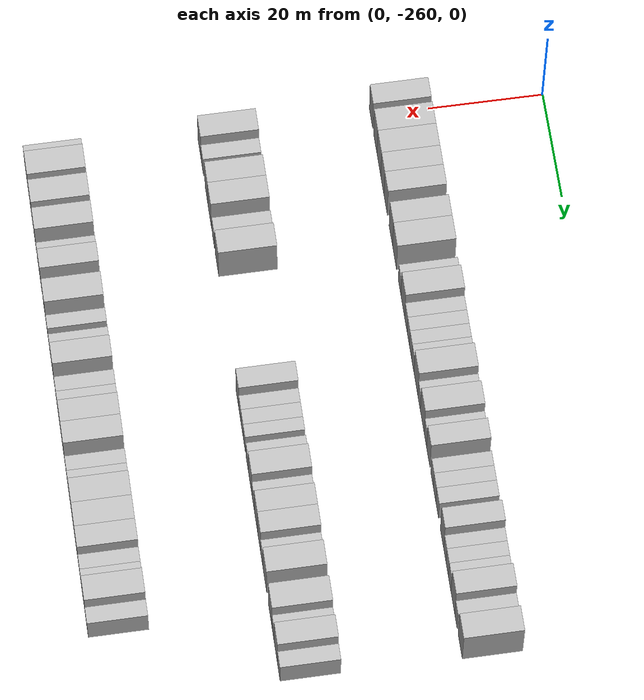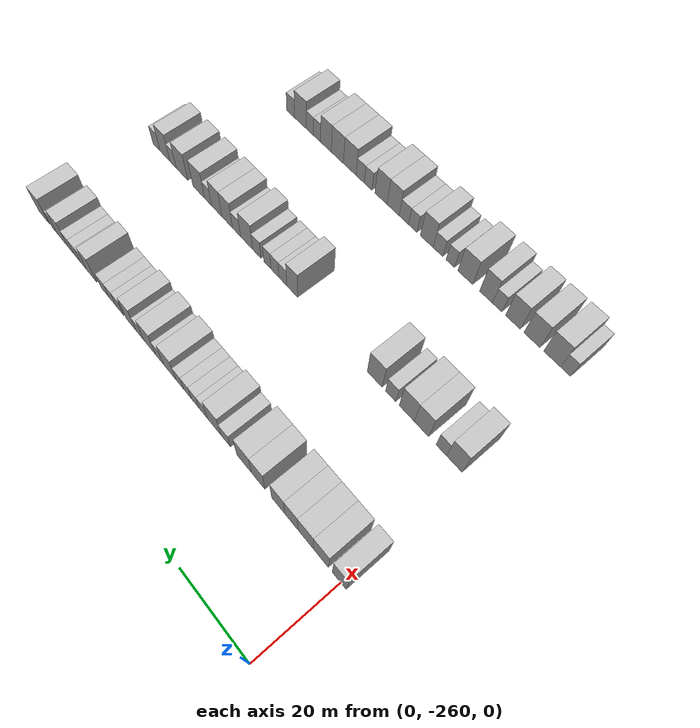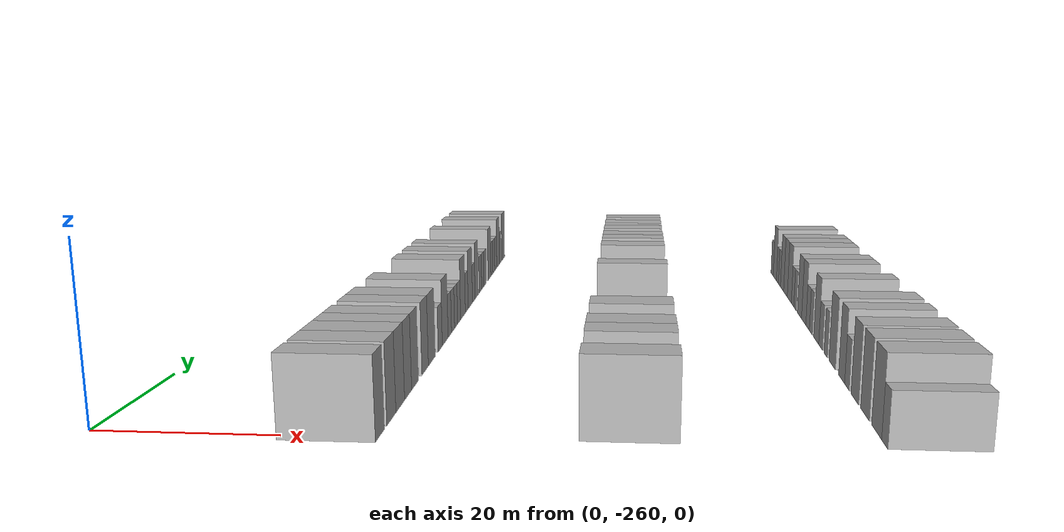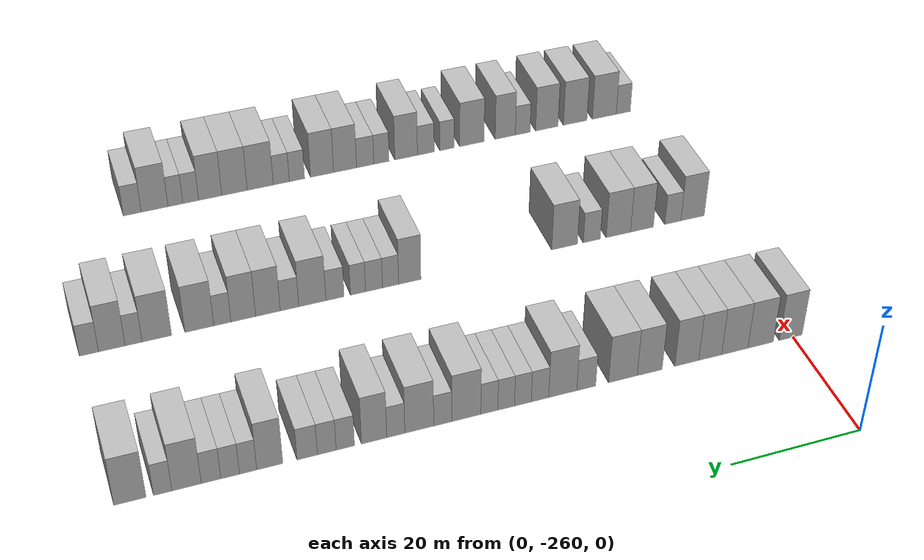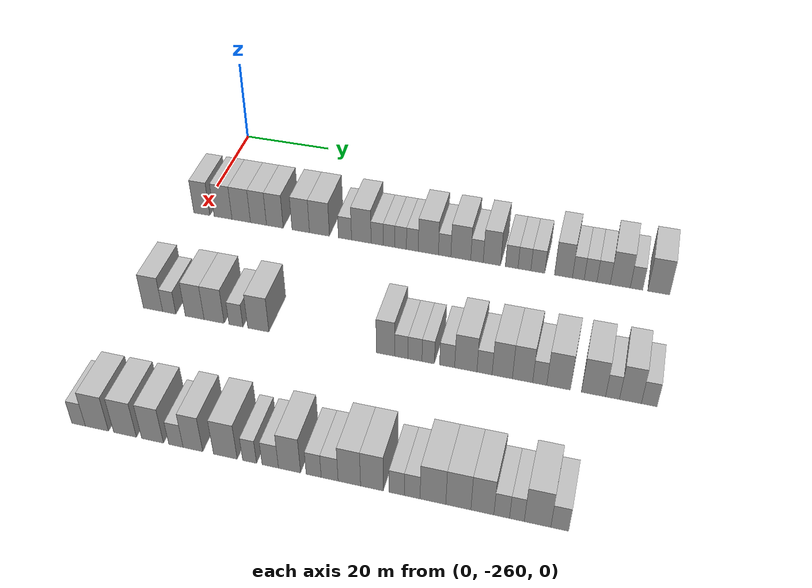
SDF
<sdf version="1.6">
 <world name="default">
  <model name="building_52">
   <static>1</static>
   <pose>25.0000 -259.5457 0 0.000000 0.000000 0.000000</pose>
   <link name="link">
    <pose>0 0 4.50 0 0 0</pose>
    <collision name="collision"><geometry><box><size>10.0000 3.7579 9.0000</size></box></geometry></collision>
    <visual name="visual">
     <cast_shadows>0</cast_shadows>
     <geometry><box><size>10.0000 3.7579 9.0000</size></box></geometry>
     <material>
      <script>
       <uri>model://HANNAS_wall/materials/scripts</uri>
       <uri>model://HANNAS_wall/materials/textures</uri>
       <name>vrc/HANNAS_wall</name>
      </script>
     </material>
    </visual>
   </link>
  </model>
  <model name="building_53">
   <static>1</static>
   <pose>25.0000 -254.5848 0 0.000000 0.000000 0.000000</pose>
   <link name="link">
    <pose>0 0 4.50 0 0 0</pose>
    <collision name="collision"><geometry><box><size>10.0000 4.1637 9.0000</size></box></geometry></collision>
    <visual name="visual">
     <cast_shadows>0</cast_shadows>
     <geometry><box><size>10.0000 4.1637 9.0000</size></box></geometry>
     <material>
      <script>
       <uri>model://HANNAS_wall/materials/scripts</uri>
       <uri>model://HANNAS_wall/materials/textures</uri>
       <name>vrc/HANNAS_wall</name>
      </script>
     </material>
    </visual>
   </link>
  </model>
  <model name="building_54">
   <static>1</static>
   <pose>25.0000 -250.3768 0 0.000000 0.000000 0.000000</pose>
   <link name="link">
    <pose>0 0 4.50 0 0 0</pose>
    <collision name="collision"><geometry><box><size>10.0000 4.2524 9.0000</size></box></geometry></collision>
    <visual name="visual">
     <cast_shadows>0</cast_shadows>
     <geometry><box><size>10.0000 4.2524 9.0000</size></box></geometry>
     <material>
      <script>
       <uri>model://HANNAS_wall/materials/scripts</uri>
       <uri>model://HANNAS_wall/materials/textures</uri>
       <name>vrc/HANNAS_wall</name>
      </script>
     </material>
    </visual>
   </link>
  </model>
  <model name="building_55">
   <static>1</static>
   <pose>25.0000 -246.4092 0 0.000000 0.000000 0.000000</pose>
   <link name="link">
    <pose>0 0 4.50 0 0 0</pose>
    <collision name="collision"><geometry><box><size>10.0000 3.6827 9.0000</size></box></geometry></collision>
    <visual name="visual">
     <cast_shadows>0</cast_shadows>
     <geometry><box><size>10.0000 3.6827 9.0000</size></box></geometry>
     <material>
      <script>
       <uri>model://HANNAS_wall/materials/scripts</uri>
       <uri>model://HANNAS_wall/materials/textures</uri>
       <name>vrc/HANNAS_wall</name>
      </script>
     </material>
    </visual>
   </link>
  </model>
  <model name="building_56">
   <static>1</static>
   <pose>25.0000 -242.6587 0 0.000000 0.000000 0.000000</pose>
   <link name="link">
    <pose>0 0 4.50 0 0 0</pose>
    <collision name="collision"><geometry><box><size>10.0000 3.8182 9.0000</size></box></geometry></collision>
    <visual name="visual">
     <cast_shadows>0</cast_shadows>
     <geometry><box><size>10.0000 3.8182 9.0000</size></box></geometry>
     <material>
      <script>
       <uri>model://HANNAS_wall/materials/scripts</uri>
       <uri>model://HANNAS_wall/materials/textures</uri>
       <name>vrc/HANNAS_wall</name>
      </script>
     </material>
    </visual>
   </link>
  </model>
  <model name="building_57">
   <static>1</static>
   <pose>25.0000 -236.7796 0 0.000000 0.000000 0.000000</pose>
   <link name="link">
    <pose>0 0 4.50 0 0 0</pose>
    <collision name="collision"><geometry><box><size>10.0000 3.9401 9.0000</size></box></geometry></collision>
    <visual name="visual">
     <cast_shadows>0</cast_shadows>
     <geometry><box><size>10.0000 3.9401 9.0000</size></box></geometry>
     <material>
      <script>
       <uri>model://HANNAS_wall/materials/scripts</uri>
       <uri>model://HANNAS_wall/materials/textures</uri>
       <name>vrc/HANNAS_wall</name>
      </script>
     </material>
    </visual>
   </link>
  </model>
  <model name="building_58">
   <static>1</static>
   <pose>25.0000 -232.5688 0 0.000000 0.000000 0.000000</pose>
   <link name="link">
    <pose>0 0 4.50 0 0 0</pose>
    <collision name="collision"><geometry><box><size>10.0000 4.4816 9.0000</size></box></geometry></collision>
    <visual name="visual">
     <cast_shadows>0</cast_shadows>
     <geometry><box><size>10.0000 4.4816 9.0000</size></box></geometry>
     <material>
      <script>
       <uri>model://HANNAS_wall/materials/scripts</uri>
       <uri>model://HANNAS_wall/materials/textures</uri>
       <name>vrc/HANNAS_wall</name>
      </script>
     </material>
    </visual>
   </link>
  </model>
  <model name="building_59">
   <static>1</static>
   <pose>25.0000 -226.8667 0 0.000000 0.000000 0.000000</pose>
   <link name="link">
    <pose>0 0 3.00 0 0 0</pose>
    <collision name="collision"><geometry><box><size>10.0000 2.9225 6.0000</size></box></geometry></collision>
    <visual name="visual">
     <cast_shadows>0</cast_shadows>
     <geometry><box><size>10.0000 2.9225 6.0000</size></box></geometry>
     <material>
      <script>
       <uri>model://HANNAS_wall/materials/scripts</uri>
       <uri>model://HANNAS_wall/materials/textures</uri>
       <name>vrc/HANNAS_wall</name>
      </script>
     </material>
    </visual>
   </link>
  </model>
  <model name="building_60">
   <static>1</static>
   <pose>25.0000 -223.2462 0 0.000000 0.000000 0.000000</pose>
   <link name="link">
    <pose>0 0 4.50 0 0 0</pose>
    <collision name="collision"><geometry><box><size>10.0000 4.3185 9.0000</size></box></geometry></collision>
    <visual name="visual">
     <cast_shadows>0</cast_shadows>
     <geometry><box><size>10.0000 4.3185 9.0000</size></box></geometry>
     <material>
      <script>
       <uri>model://HANNAS_wall/materials/scripts</uri>
       <uri>model://HANNAS_wall/materials/textures</uri>
       <name>vrc/HANNAS_wall</name>
      </script>
     </material>
    </visual>
   </link>
  </model>
  <model name="building_61">
   <static>1</static>
   <pose>25.0000 -219.7509 0 0.000000 0.000000 0.000000</pose>
   <link name="link">
    <pose>0 0 3.00 0 0 0</pose>
    <collision name="collision"><geometry><box><size>10.0000 2.6723 6.0000</size></box></geometry></collision>
    <visual name="visual">
     <cast_shadows>0</cast_shadows>
     <geometry><box><size>10.0000 2.6723 6.0000</size></box></geometry>
     <material>
      <script>
       <uri>model://HANNAS_wall/materials/scripts</uri>
       <uri>model://HANNAS_wall/materials/textures</uri>
       <name>vrc/HANNAS_wall</name>
      </script>
     </material>
    </visual>
   </link>
  </model>
  <model name="building_62">
   <static>1</static>
   <pose>25.0000 -217.1449 0 0.000000 0.000000 0.000000</pose>
   <link name="link">
    <pose>0 0 3.00 0 0 0</pose>
    <collision name="collision"><geometry><box><size>10.0000 2.5397 6.0000</size></box></geometry></collision>
    <visual name="visual">
     <cast_shadows>0</cast_shadows>
     <geometry><box><size>10.0000 2.5397 6.0000</size></box></geometry>
     <material>
      <script>
       <uri>model://HANNAS_wall/materials/scripts</uri>
       <uri>model://HANNAS_wall/materials/textures</uri>
       <name>vrc/HANNAS_wall</name>
      </script>
     </material>
    </visual>
   </link>
  </model>
  <model name="building_63">
   <static>1</static>
   <pose>25.0000 -214.6200 0 0.000000 0.000000 0.000000</pose>
   <link name="link">
    <pose>0 0 3.00 0 0 0</pose>
    <collision name="collision"><geometry><box><size>10.0000 2.5101 6.0000</size></box></geometry></collision>
    <visual name="visual">
     <cast_shadows>0</cast_shadows>
     <geometry><box><size>10.0000 2.5101 6.0000</size></box></geometry>
     <material>
      <script>
       <uri>model://HANNAS_wall/materials/scripts</uri>
       <uri>model://HANNAS_wall/materials/textures</uri>
       <name>vrc/HANNAS_wall</name>
      </script>
     </material>
    </visual>
   </link>
  </model>
  <model name="building_64">
   <static>1</static>
   <pose>25.0000 -212.0838 0 0.000000 0.000000 0.000000</pose>
   <link name="link">
    <pose>0 0 3.00 0 0 0</pose>
    <collision name="collision"><geometry><box><size>10.0000 2.5625 6.0000</size></box></geometry></collision>
    <visual name="visual">
     <cast_shadows>0</cast_shadows>
     <geometry><box><size>10.0000 2.5625 6.0000</size></box></geometry>
     <material>
      <script>
       <uri>model://HANNAS_wall/materials/scripts</uri>
       <uri>model://HANNAS_wall/materials/textures</uri>
       <name>vrc/HANNAS_wall</name>
      </script>
     </material>
    </visual>
   </link>
  </model>
  <model name="building_65">
   <static>1</static>
   <pose>25.0000 -208.6369 0 0.000000 0.000000 0.000000</pose>
   <link name="link">
    <pose>0 0 4.50 0 0 0</pose>
    <collision name="collision"><geometry><box><size>10.0000 4.3314 9.0000</size></box></geometry></collision>
    <visual name="visual">
     <cast_shadows>0</cast_shadows>
     <geometry><box><size>10.0000 4.3314 9.0000</size></box></geometry>
     <material>
      <script>
       <uri>model://HANNAS_wall/materials/scripts</uri>
       <uri>model://HANNAS_wall/materials/textures</uri>
       <name>vrc/HANNAS_wall</name>
      </script>
     </material>
    </visual>
   </link>
  </model>
  <model name="building_66">
   <static>1</static>
   <pose>25.0000 -205.1364 0 0.000000 0.000000 0.000000</pose>
   <link name="link">
    <pose>0 0 3.00 0 0 0</pose>
    <collision name="collision"><geometry><box><size>10.0000 2.6695 6.0000</size></box></geometry></collision>
    <visual name="visual">
     <cast_shadows>0</cast_shadows>
     <geometry><box><size>10.0000 2.6695 6.0000</size></box></geometry>
     <material>
      <script>
       <uri>model://HANNAS_wall/materials/scripts</uri>
       <uri>model://HANNAS_wall/materials/textures</uri>
       <name>vrc/HANNAS_wall</name>
      </script>
     </material>
    </visual>
   </link>
  </model>
  <model name="building_67">
   <static>1</static>
   <pose>25.0000 -201.6869 0 0.000000 0.000000 0.000000</pose>
   <link name="link">
    <pose>0 0 4.50 0 0 0</pose>
    <collision name="collision"><geometry><box><size>10.0000 4.2294 9.0000</size></box></geometry></collision>
    <visual name="visual">
     <cast_shadows>0</cast_shadows>
     <geometry><box><size>10.0000 4.2294 9.0000</size></box></geometry>
     <material>
      <script>
       <uri>model://HANNAS_wall/materials/scripts</uri>
       <uri>model://HANNAS_wall/materials/textures</uri>
       <name>vrc/HANNAS_wall</name>
      </script>
     </material>
    </visual>
   </link>
  </model>
  <model name="building_68">
   <static>1</static>
   <pose>25.0000 -198.2515 0 0.000000 0.000000 0.000000</pose>
   <link name="link">
    <pose>0 0 3.00 0 0 0</pose>
    <collision name="collision"><geometry><box><size>10.0000 2.6414 6.0000</size></box></geometry></collision>
    <visual name="visual">
     <cast_shadows>0</cast_shadows>
     <geometry><box><size>10.0000 2.6414 6.0000</size></box></geometry>
     <material>
      <script>
       <uri>model://HANNAS_wall/materials/scripts</uri>
       <uri>model://HANNAS_wall/materials/textures</uri>
       <name>vrc/HANNAS_wall</name>
      </script>
     </material>
    </visual>
   </link>
  </model>
  <model name="building_69">
   <static>1</static>
   <pose>25.0000 -195.0976 0 0.000000 0.000000 0.000000</pose>
   <link name="link">
    <pose>0 0 4.50 0 0 0</pose>
    <collision name="collision"><geometry><box><size>10.0000 3.6665 9.0000</size></box></geometry></collision>
    <visual name="visual">
     <cast_shadows>0</cast_shadows>
     <geometry><box><size>10.0000 3.6665 9.0000</size></box></geometry>
     <material>
      <script>
       <uri>model://HANNAS_wall/materials/scripts</uri>
       <uri>model://HANNAS_wall/materials/textures</uri>
       <name>vrc/HANNAS_wall</name>
      </script>
     </material>
    </visual>
   </link>
  </model>
  <model name="building_70">
   <static>1</static>
   <pose>25.0000 -190.9425 0 0.000000 0.000000 0.000000</pose>
   <link name="link">
    <pose>0 0 3.00 0 0 0</pose>
    <collision name="collision"><geometry><box><size>10.0000 2.6438 6.0000</size></box></geometry></collision>
    <visual name="visual">
     <cast_shadows>0</cast_shadows>
     <geometry><box><size>10.0000 2.6438 6.0000</size></box></geometry>
     <material>
      <script>
       <uri>model://HANNAS_wall/materials/scripts</uri>
       <uri>model://HANNAS_wall/materials/textures</uri>
       <name>vrc/HANNAS_wall</name>
      </script>
     </material>
    </visual>
   </link>
  </model>
  <model name="building_71">
   <static>1</static>
   <pose>25.0000 -188.2824 0 0.000000 0.000000 0.000000</pose>
   <link name="link">
    <pose>0 0 3.00 0 0 0</pose>
    <collision name="collision"><geometry><box><size>10.0000 2.6764 6.0000</size></box></geometry></collision>
    <visual name="visual">
     <cast_shadows>0</cast_shadows>
     <geometry><box><size>10.0000 2.6764 6.0000</size></box></geometry>
     <material>
      <script>
       <uri>model://HANNAS_wall/materials/scripts</uri>
       <uri>model://HANNAS_wall/materials/textures</uri>
       <name>vrc/HANNAS_wall</name>
      </script>
     </material>
    </visual>
   </link>
  </model>
  <model name="building_72">
   <static>1</static>
   <pose>25.0000 -185.4941 0 0.000000 0.000000 0.000000</pose>
   <link name="link">
    <pose>0 0 3.00 0 0 0</pose>
    <collision name="collision"><geometry><box><size>10.0000 2.9001 6.0000</size></box></geometry></collision>
    <visual name="visual">
     <cast_shadows>0</cast_shadows>
     <geometry><box><size>10.0000 2.9001 6.0000</size></box></geometry>
     <material>
      <script>
       <uri>model://HANNAS_wall/materials/scripts</uri>
       <uri>model://HANNAS_wall/materials/textures</uri>
       <name>vrc/HANNAS_wall</name>
      </script>
     </material>
    </visual>
   </link>
  </model>
  <model name="building_73">
   <static>1</static>
   <pose>25.0000 -180.2098 0 0.000000 0.000000 0.000000</pose>
   <link name="link">
    <pose>0 0 4.50 0 0 0</pose>
    <collision name="collision"><geometry><box><size>10.0000 3.6686 9.0000</size></box></geometry></collision>
    <visual name="visual">
     <cast_shadows>0</cast_shadows>
     <geometry><box><size>10.0000 3.6686 9.0000</size></box></geometry>
     <material>
      <script>
       <uri>model://HANNAS_wall/materials/scripts</uri>
       <uri>model://HANNAS_wall/materials/textures</uri>
       <name>vrc/HANNAS_wall</name>
      </script>
     </material>
    </visual>
   </link>
  </model>
  <model name="building_74">
   <static>1</static>
   <pose>25.0000 -177.1696 0 0.000000 0.000000 0.000000</pose>
   <link name="link">
    <pose>0 0 3.00 0 0 0</pose>
    <collision name="collision"><geometry><box><size>10.0000 2.4118 6.0000</size></box></geometry></collision>
    <visual name="visual">
     <cast_shadows>0</cast_shadows>
     <geometry><box><size>10.0000 2.4118 6.0000</size></box></geometry>
     <material>
      <script>
       <uri>model://HANNAS_wall/materials/scripts</uri>
       <uri>model://HANNAS_wall/materials/textures</uri>
       <name>vrc/HANNAS_wall</name>
      </script>
     </material>
    </visual>
   </link>
  </model>
  <model name="building_75">
   <static>1</static>
   <pose>25.0000 -174.6693 0 0.000000 0.000000 0.000000</pose>
   <link name="link">
    <pose>0 0 3.00 0 0 0</pose>
    <collision name="collision"><geometry><box><size>10.0000 2.5888 6.0000</size></box></geometry></collision>
    <visual name="visual">
     <cast_shadows>0</cast_shadows>
     <geometry><box><size>10.0000 2.5888 6.0000</size></box></geometry>
     <material>
      <script>
       <uri>model://HANNAS_wall/materials/scripts</uri>
       <uri>model://HANNAS_wall/materials/textures</uri>
       <name>vrc/HANNAS_wall</name>
      </script>
     </material>
    </visual>
   </link>
  </model>
  <model name="building_76">
   <static>1</static>
   <pose>25.0000 -172.0220 0 0.000000 0.000000 0.000000</pose>
   <link name="link">
    <pose>0 0 3.00 0 0 0</pose>
    <collision name="collision"><geometry><box><size>10.0000 2.7059 6.0000</size></box></geometry></collision>
    <visual name="visual">
     <cast_shadows>0</cast_shadows>
     <geometry><box><size>10.0000 2.7059 6.0000</size></box></geometry>
     <material>
      <script>
       <uri>model://HANNAS_wall/materials/scripts</uri>
       <uri>model://HANNAS_wall/materials/textures</uri>
       <name>vrc/HANNAS_wall</name>
      </script>
     </material>
    </visual>
   </link>
  </model>
  <model name="building_77">
   <static>1</static>
   <pose>25.0000 -168.6550 0 0.000000 0.000000 0.000000</pose>
   <link name="link">
    <pose>0 0 4.50 0 0 0</pose>
    <collision name="collision"><geometry><box><size>10.0000 4.0281 9.0000</size></box></geometry></collision>
    <visual name="visual">
     <cast_shadows>0</cast_shadows>
     <geometry><box><size>10.0000 4.0281 9.0000</size></box></geometry>
     <material>
      <script>
       <uri>model://HANNAS_wall/materials/scripts</uri>
       <uri>model://HANNAS_wall/materials/textures</uri>
       <name>vrc/HANNAS_wall</name>
      </script>
     </material>
    </visual>
   </link>
  </model>
  <model name="building_78">
   <static>1</static>
   <pose>25.0000 -165.3881 0 0.000000 0.000000 0.000000</pose>
   <link name="link">
    <pose>0 0 3.00 0 0 0</pose>
    <collision name="collision"><geometry><box><size>10.0000 2.5058 6.0000</size></box></geometry></collision>
    <visual name="visual">
     <cast_shadows>0</cast_shadows>
     <geometry><box><size>10.0000 2.5058 6.0000</size></box></geometry>
     <material>
      <script>
       <uri>model://HANNAS_wall/materials/scripts</uri>
       <uri>model://HANNAS_wall/materials/textures</uri>
       <name>vrc/HANNAS_wall</name>
      </script>
     </material>
    </visual>
   </link>
  </model>
  <model name="building_79">
   <static>1</static>
   <pose>25.0000 -160.9513 0 0.000000 0.000000 0.000000</pose>
   <link name="link">
    <pose>0 0 4.50 0 0 0</pose>
    <collision name="collision"><geometry><box><size>10.0000 4.3678 9.0000</size></box></geometry></collision>
    <visual name="visual">
     <cast_shadows>0</cast_shadows>
     <geometry><box><size>10.0000 4.3678 9.0000</size></box></geometry>
     <material>
      <script>
       <uri>model://HANNAS_wall/materials/scripts</uri>
       <uri>model://HANNAS_wall/materials/textures</uri>
       <name>vrc/HANNAS_wall</name>
      </script>
     </material>
    </visual>
   </link>
  </model>
  <model name="building_275">
   <static>1</static>
   <pose>55.0000 -257.5789 0 0.000000 0.000000 0.000000</pose>
   <link name="link">
    <pose>0 0 4.50 0 0 0</pose>
    <collision name="collision"><geometry><box><size>10.0000 4.1153 9.0000</size></box></geometry></collision>
    <visual name="visual">
     <cast_shadows>0</cast_shadows>
     <geometry><box><size>10.0000 4.1153 9.0000</size></box></geometry>
     <material>
      <script>
       <uri>model://HANNAS_wall/materials/scripts</uri>
       <uri>model://HANNAS_wall/materials/textures</uri>
       <name>vrc/HANNAS_wall</name>
      </script>
     </material>
    </visual>
   </link>
  </model>
  <model name="building_276">
   <static>1</static>
   <pose>55.0000 -254.1149 0 0.000000 0.000000 0.000000</pose>
   <link name="link">
    <pose>0 0 3.00 0 0 0</pose>
    <collision name="collision"><geometry><box><size>10.0000 2.8126 6.0000</size></box></geometry></collision>
    <visual name="visual">
     <cast_shadows>0</cast_shadows>
     <geometry><box><size>10.0000 2.8126 6.0000</size></box></geometry>
     <material>
      <script>
       <uri>model://HANNAS_wall/materials/scripts</uri>
       <uri>model://HANNAS_wall/materials/textures</uri>
       <name>vrc/HANNAS_wall</name>
      </script>
     </material>
    </visual>
   </link>
  </model>
  <model name="building_277">
   <static>1</static>
   <pose>55.0000 -248.7320 0 0.000000 0.000000 0.000000</pose>
   <link name="link">
    <pose>0 0 4.50 0 0 0</pose>
    <collision name="collision"><geometry><box><size>10.0000 3.9532 9.0000</size></box></geometry></collision>
    <visual name="visual">
     <cast_shadows>0</cast_shadows>
     <geometry><box><size>10.0000 3.9532 9.0000</size></box></geometry>
     <material>
      <script>
       <uri>model://HANNAS_wall/materials/scripts</uri>
       <uri>model://HANNAS_wall/materials/textures</uri>
       <name>vrc/HANNAS_wall</name>
      </script>
     </material>
    </visual>
   </link>
  </model>
  <model name="building_278">
   <static>1</static>
   <pose>55.0000 -244.6513 0 0.000000 0.000000 0.000000</pose>
   <link name="link">
    <pose>0 0 4.50 0 0 0</pose>
    <collision name="collision"><geometry><box><size>10.0000 4.2082 9.0000</size></box></geometry></collision>
    <visual name="visual">
     <cast_shadows>0</cast_shadows>
     <geometry><box><size>10.0000 4.2082 9.0000</size></box></geometry>
     <material>
      <script>
       <uri>model://HANNAS_wall/materials/scripts</uri>
       <uri>model://HANNAS_wall/materials/textures</uri>
       <name>vrc/HANNAS_wall</name>
      </script>
     </material>
    </visual>
   </link>
  </model>
  <model name="building_279">
   <static>1</static>
   <pose>55.0000 -240.0978 0 0.000000 0.000000 0.000000</pose>
   <link name="link">
    <pose>0 0 3.00 0 0 0</pose>
    <collision name="collision"><geometry><box><size>10.0000 2.8988 6.0000</size></box></geometry></collision>
    <visual name="visual">
     <cast_shadows>0</cast_shadows>
     <geometry><box><size>10.0000 2.8988 6.0000</size></box></geometry>
     <material>
      <script>
       <uri>model://HANNAS_wall/materials/scripts</uri>
       <uri>model://HANNAS_wall/materials/textures</uri>
       <name>vrc/HANNAS_wall</name>
      </script>
     </material>
    </visual>
   </link>
  </model>
  <model name="building_280">
   <static>1</static>
   <pose>55.0000 -235.4763 0 0.000000 0.000000 0.000000</pose>
   <link name="link">
    <pose>0 0 4.50 0 0 0</pose>
    <collision name="collision"><geometry><box><size>10.0000 4.3441 9.0000</size></box></geometry></collision>
    <visual name="visual">
     <cast_shadows>0</cast_shadows>
     <geometry><box><size>10.0000 4.3441 9.0000</size></box></geometry>
     <material>
      <script>
       <uri>model://HANNAS_wall/materials/scripts</uri>
       <uri>model://HANNAS_wall/materials/textures</uri>
       <name>vrc/HANNAS_wall</name>
      </script>
     </material>
    </visual>
   </link>
  </model>
  <model name="building_281">
   <static>1</static>
   <pose>55.0000 -209.9006 0 0.000000 0.000000 0.000000</pose>
   <link name="link">
    <pose>0 0 4.50 0 0 0</pose>
    <collision name="collision"><geometry><box><size>10.0000 3.6024 9.0000</size></box></geometry></collision>
    <visual name="visual">
     <cast_shadows>0</cast_shadows>
     <geometry><box><size>10.0000 3.6024 9.0000</size></box></geometry>
     <material>
      <script>
       <uri>model://HANNAS_wall/materials/scripts</uri>
       <uri>model://HANNAS_wall/materials/textures</uri>
       <name>vrc/HANNAS_wall</name>
      </script>
     </material>
    </visual>
   </link>
  </model>
  <model name="building_282">
   <static>1</static>
   <pose>55.0000 -206.8129 0 0.000000 0.000000 0.000000</pose>
   <link name="link">
    <pose>0 0 3.00 0 0 0</pose>
    <collision name="collision"><geometry><box><size>10.0000 2.5730 6.0000</size></box></geometry></collision>
    <visual name="visual">
     <cast_shadows>0</cast_shadows>
     <geometry><box><size>10.0000 2.5730 6.0000</size></box></geometry>
     <material>
      <script>
       <uri>model://HANNAS_wall/materials/scripts</uri>
       <uri>model://HANNAS_wall/materials/textures</uri>
       <name>vrc/HANNAS_wall</name>
      </script>
     </material>
    </visual>
   </link>
  </model>
  <model name="building_283">
   <static>1</static>
   <pose>55.0000 -204.1713 0 0.000000 0.000000 0.000000</pose>
   <link name="link">
    <pose>0 0 3.00 0 0 0</pose>
    <collision name="collision"><geometry><box><size>10.0000 2.7102 6.0000</size></box></geometry></collision>
    <visual name="visual">
     <cast_shadows>0</cast_shadows>
     <geometry><box><size>10.0000 2.7102 6.0000</size></box></geometry>
     <material>
      <script>
       <uri>model://HANNAS_wall/materials/scripts</uri>
       <uri>model://HANNAS_wall/materials/textures</uri>
       <name>vrc/HANNAS_wall</name>
      </script>
     </material>
    </visual>
   </link>
  </model>
  <model name="building_284">
   <static>1</static>
   <pose>55.0000 -201.6143 0 0.000000 0.000000 0.000000</pose>
   <link name="link">
    <pose>0 0 3.00 0 0 0</pose>
    <collision name="collision"><geometry><box><size>10.0000 2.4038 6.0000</size></box></geometry></collision>
    <visual name="visual">
     <cast_shadows>0</cast_shadows>
     <geometry><box><size>10.0000 2.4038 6.0000</size></box></geometry>
     <material>
      <script>
       <uri>model://HANNAS_wall/materials/scripts</uri>
       <uri>model://HANNAS_wall/materials/textures</uri>
       <name>vrc/HANNAS_wall</name>
      </script>
     </material>
    </visual>
   </link>
  </model>
  <model name="building_285">
   <static>1</static>
   <pose>55.0000 -197.9735 0 0.000000 0.000000 0.000000</pose>
   <link name="link">
    <pose>0 0 3.00 0 0 0</pose>
    <collision name="collision"><geometry><box><size>10.0000 2.8779 6.0000</size></box></geometry></collision>
    <visual name="visual">
     <cast_shadows>0</cast_shadows>
     <geometry><box><size>10.0000 2.8779 6.0000</size></box></geometry>
     <material>
      <script>
       <uri>model://HANNAS_wall/materials/scripts</uri>
       <uri>model://HANNAS_wall/materials/textures</uri>
       <name>vrc/HANNAS_wall</name>
      </script>
     </material>
    </visual>
   </link>
  </model>
  <model name="building_286">
   <static>1</static>
   <pose>55.0000 -194.4116 0 0.000000 0.000000 0.000000</pose>
   <link name="link">
    <pose>0 0 4.50 0 0 0</pose>
    <collision name="collision"><geometry><box><size>10.0000 4.2459 9.0000</size></box></geometry></collision>
    <visual name="visual">
     <cast_shadows>0</cast_shadows>
     <geometry><box><size>10.0000 4.2459 9.0000</size></box></geometry>
     <material>
      <script>
       <uri>model://HANNAS_wall/materials/scripts</uri>
       <uri>model://HANNAS_wall/materials/textures</uri>
       <name>vrc/HANNAS_wall</name>
      </script>
     </material>
    </visual>
   </link>
  </model>
  <model name="building_287">
   <static>1</static>
   <pose>55.0000 -190.8478 0 0.000000 0.000000 0.000000</pose>
   <link name="link">
    <pose>0 0 3.00 0 0 0</pose>
    <collision name="collision"><geometry><box><size>10.0000 2.8817 6.0000</size></box></geometry></collision>
    <visual name="visual">
     <cast_shadows>0</cast_shadows>
     <geometry><box><size>10.0000 2.8817 6.0000</size></box></geometry>
     <material>
      <script>
       <uri>model://HANNAS_wall/materials/scripts</uri>
       <uri>model://HANNAS_wall/materials/textures</uri>
       <name>vrc/HANNAS_wall</name>
      </script>
     </material>
    </visual>
   </link>
  </model>
  <model name="building_288">
   <static>1</static>
   <pose>55.0000 -187.5002 0 0.000000 0.000000 0.000000</pose>
   <link name="link">
    <pose>0 0 4.50 0 0 0</pose>
    <collision name="collision"><geometry><box><size>10.0000 3.8134 9.0000</size></box></geometry></collision>
    <visual name="visual">
     <cast_shadows>0</cast_shadows>
     <geometry><box><size>10.0000 3.8134 9.0000</size></box></geometry>
     <material>
      <script>
       <uri>model://HANNAS_wall/materials/scripts</uri>
       <uri>model://HANNAS_wall/materials/textures</uri>
       <name>vrc/HANNAS_wall</name>
      </script>
     </material>
    </visual>
   </link>
  </model>
  <model name="building_289">
   <static>1</static>
   <pose>55.0000 -183.7014 0 0.000000 0.000000 0.000000</pose>
   <link name="link">
    <pose>0 0 4.50 0 0 0</pose>
    <collision name="collision"><geometry><box><size>10.0000 3.7843 9.0000</size></box></geometry></collision>
    <visual name="visual">
     <cast_shadows>0</cast_shadows>
     <geometry><box><size>10.0000 3.7843 9.0000</size></box></geometry>
     <material>
      <script>
       <uri>model://HANNAS_wall/materials/scripts</uri>
       <uri>model://HANNAS_wall/materials/textures</uri>
       <name>vrc/HANNAS_wall</name>
      </script>
     </material>
    </visual>
   </link>
  </model>
  <model name="building_290">
   <static>1</static>
   <pose>55.0000 -180.4976 0 0.000000 0.000000 0.000000</pose>
   <link name="link">
    <pose>0 0 3.00 0 0 0</pose>
    <collision name="collision"><geometry><box><size>10.0000 2.6234 6.0000</size></box></geometry></collision>
    <visual name="visual">
     <cast_shadows>0</cast_shadows>
     <geometry><box><size>10.0000 2.6234 6.0000</size></box></geometry>
     <material>
      <script>
       <uri>model://HANNAS_wall/materials/scripts</uri>
       <uri>model://HANNAS_wall/materials/textures</uri>
       <name>vrc/HANNAS_wall</name>
      </script>
     </material>
    </visual>
   </link>
  </model>
  <model name="building_291">
   <static>1</static>
   <pose>55.0000 -176.9973 0 0.000000 0.000000 0.000000</pose>
   <link name="link">
    <pose>0 0 4.50 0 0 0</pose>
    <collision name="collision"><geometry><box><size>10.0000 4.3772 9.0000</size></box></geometry></collision>
    <visual name="visual">
     <cast_shadows>0</cast_shadows>
     <geometry><box><size>10.0000 4.3772 9.0000</size></box></geometry>
     <material>
      <script>
       <uri>model://HANNAS_wall/materials/scripts</uri>
       <uri>model://HANNAS_wall/materials/textures</uri>
       <name>vrc/HANNAS_wall</name>
      </script>
     </material>
    </visual>
   </link>
  </model>
  <model name="building_292">
   <static>1</static>
   <pose>55.0000 -170.6010 0 0.000000 0.000000 0.000000</pose>
   <link name="link">
    <pose>0 0 4.50 0 0 0</pose>
    <collision name="collision"><geometry><box><size>10.0000 4.4155 9.0000</size></box></geometry></collision>
    <visual name="visual">
     <cast_shadows>0</cast_shadows>
     <geometry><box><size>10.0000 4.4155 9.0000</size></box></geometry>
     <material>
      <script>
       <uri>model://HANNAS_wall/materials/scripts</uri>
       <uri>model://HANNAS_wall/materials/textures</uri>
       <name>vrc/HANNAS_wall</name>
      </script>
     </material>
    </visual>
   </link>
  </model>
  <model name="building_293">
   <static>1</static>
   <pose>55.0000 -167.1370 0 0.000000 0.000000 0.000000</pose>
   <link name="link">
    <pose>0 0 3.00 0 0 0</pose>
    <collision name="collision"><geometry><box><size>10.0000 2.5123 6.0000</size></box></geometry></collision>
    <visual name="visual">
     <cast_shadows>0</cast_shadows>
     <geometry><box><size>10.0000 2.5123 6.0000</size></box></geometry>
     <material>
      <script>
       <uri>model://HANNAS_wall/materials/scripts</uri>
       <uri>model://HANNAS_wall/materials/textures</uri>
       <name>vrc/HANNAS_wall</name>
      </script>
     </material>
    </visual>
   </link>
  </model>
  <model name="building_294">
   <static>1</static>
   <pose>55.0000 -163.9130 0 0.000000 0.000000 0.000000</pose>
   <link name="link">
    <pose>0 0 4.50 0 0 0</pose>
    <collision name="collision"><geometry><box><size>10.0000 3.9358 9.0000</size></box></geometry></collision>
    <visual name="visual">
     <cast_shadows>0</cast_shadows>
     <geometry><box><size>10.0000 3.9358 9.0000</size></box></geometry>
     <material>
      <script>
       <uri>model://HANNAS_wall/materials/scripts</uri>
       <uri>model://HANNAS_wall/materials/textures</uri>
       <name>vrc/HANNAS_wall</name>
      </script>
     </material>
    </visual>
   </link>
  </model>
  <model name="building_295">
   <static>1</static>
   <pose>55.0000 -160.5328 0 0.000000 0.000000 0.000000</pose>
   <link name="link">
    <pose>0 0 3.00 0 0 0</pose>
    <collision name="collision"><geometry><box><size>10.0000 2.8246 6.0000</size></box></geometry></collision>
    <visual name="visual">
     <cast_shadows>0</cast_shadows>
     <geometry><box><size>10.0000 2.8246 6.0000</size></box></geometry>
     <material>
      <script>
       <uri>model://HANNAS_wall/materials/scripts</uri>
       <uri>model://HANNAS_wall/materials/textures</uri>
       <name>vrc/HANNAS_wall</name>
      </script>
     </material>
    </visual>
   </link>
  </model>
  <model name="building_490">
   <static>1</static>
   <pose>85.0000 -258.3672 0 0.000000 0.000000 0.000000</pose>
   <link name="link">
    <pose>0 0 3.00 0 0 0</pose>
    <collision name="collision"><geometry><box><size>10.0000 2.6274 6.0000</size></box></geometry></collision>
    <visual name="visual">
     <cast_shadows>0</cast_shadows>
     <geometry><box><size>10.0000 2.6274 6.0000</size></box></geometry>
     <material>
      <script>
       <uri>model://HANNAS_wall/materials/scripts</uri>
       <uri>model://HANNAS_wall/materials/textures</uri>
       <name>vrc/HANNAS_wall</name>
      </script>
     </material>
    </visual>
   </link>
  </model>
  <model name="building_491">
   <static>1</static>
   <pose>85.0000 -254.8154 0 0.000000 0.000000 0.000000</pose>
   <link name="link">
    <pose>0 0 4.50 0 0 0</pose>
    <collision name="collision"><geometry><box><size>10.0000 4.4761 9.0000</size></box></geometry></collision>
    <visual name="visual">
     <cast_shadows>0</cast_shadows>
     <geometry><box><size>10.0000 4.4761 9.0000</size></box></geometry>
     <material>
      <script>
       <uri>model://HANNAS_wall/materials/scripts</uri>
       <uri>model://HANNAS_wall/materials/textures</uri>
       <name>vrc/HANNAS_wall</name>
      </script>
     </material>
    </visual>
   </link>
  </model>
  <model name="building_492">
   <static>1</static>
   <pose>85.0000 -249.4006 0 0.000000 0.000000 0.000000</pose>
   <link name="link">
    <pose>0 0 4.50 0 0 0</pose>
    <collision name="collision"><geometry><box><size>10.0000 4.3535 9.0000</size></box></geometry></collision>
    <visual name="visual">
     <cast_shadows>0</cast_shadows>
     <geometry><box><size>10.0000 4.3535 9.0000</size></box></geometry>
     <material>
      <script>
       <uri>model://HANNAS_wall/materials/scripts</uri>
       <uri>model://HANNAS_wall/materials/textures</uri>
       <name>vrc/HANNAS_wall</name>
      </script>
     </material>
    </visual>
   </link>
  </model>
  <model name="building_493">
   <static>1</static>
   <pose>85.0000 -244.1594 0 0.000000 0.000000 0.000000</pose>
   <link name="link">
    <pose>0 0 4.50 0 0 0</pose>
    <collision name="collision"><geometry><box><size>10.0000 4.1290 9.0000</size></box></geometry></collision>
    <visual name="visual">
     <cast_shadows>0</cast_shadows>
     <geometry><box><size>10.0000 4.1290 9.0000</size></box></geometry>
     <material>
      <script>
       <uri>model://HANNAS_wall/materials/scripts</uri>
       <uri>model://HANNAS_wall/materials/textures</uri>
       <name>vrc/HANNAS_wall</name>
      </script>
     </material>
    </visual>
   </link>
  </model>
  <model name="building_494">
   <static>1</static>
   <pose>85.0000 -239.7485 0 0.000000 0.000000 0.000000</pose>
   <link name="link">
    <pose>0 0 3.00 0 0 0</pose>
    <collision name="collision"><geometry><box><size>10.0000 2.6926 6.0000</size></box></geometry></collision>
    <visual name="visual">
     <cast_shadows>0</cast_shadows>
     <geometry><box><size>10.0000 2.6926 6.0000</size></box></geometry>
     <material>
      <script>
       <uri>model://HANNAS_wall/materials/scripts</uri>
       <uri>model://HANNAS_wall/materials/textures</uri>
       <name>vrc/HANNAS_wall</name>
      </script>
     </material>
    </visual>
   </link>
  </model>
  <model name="building_495">
   <static>1</static>
   <pose>85.0000 -236.5706 0 0.000000 0.000000 0.000000</pose>
   <link name="link">
    <pose>0 0 4.50 0 0 0</pose>
    <collision name="collision"><geometry><box><size>10.0000 3.6631 9.0000</size></box></geometry></collision>
    <visual name="visual">
     <cast_shadows>0</cast_shadows>
     <geometry><box><size>10.0000 3.6631 9.0000</size></box></geometry>
     <material>
      <script>
       <uri>model://HANNAS_wall/materials/scripts</uri>
       <uri>model://HANNAS_wall/materials/textures</uri>
       <name>vrc/HANNAS_wall</name>
      </script>
     </material>
    </visual>
   </link>
  </model>
  <model name="building_496">
   <static>1</static>
   <pose>85.0000 -230.5539 0 0.000000 0.000000 0.000000</pose>
   <link name="link">
    <pose>0 0 4.50 0 0 0</pose>
    <collision name="collision"><geometry><box><size>10.0000 4.3704 9.0000</size></box></geometry></collision>
    <visual name="visual">
     <cast_shadows>0</cast_shadows>
     <geometry><box><size>10.0000 4.3704 9.0000</size></box></geometry>
     <material>
      <script>
       <uri>model://HANNAS_wall/materials/scripts</uri>
       <uri>model://HANNAS_wall/materials/textures</uri>
       <name>vrc/HANNAS_wall</name>
      </script>
     </material>
    </visual>
   </link>
  </model>
  <model name="building_497">
   <static>1</static>
   <pose>85.0000 -226.0972 0 0.000000 0.000000 0.000000</pose>
   <link name="link">
    <pose>0 0 3.00 0 0 0</pose>
    <collision name="collision"><geometry><box><size>10.0000 2.5431 6.0000</size></box></geometry></collision>
    <visual name="visual">
     <cast_shadows>0</cast_shadows>
     <geometry><box><size>10.0000 2.5431 6.0000</size></box></geometry>
     <material>
      <script>
       <uri>model://HANNAS_wall/materials/scripts</uri>
       <uri>model://HANNAS_wall/materials/textures</uri>
       <name>vrc/HANNAS_wall</name>
      </script>
     </material>
    </visual>
   </link>
  </model>
  <model name="building_498">
   <static>1</static>
   <pose>85.0000 -222.3449 0 0.000000 0.000000 0.000000</pose>
   <link name="link">
    <pose>0 0 3.00 0 0 0</pose>
    <collision name="collision"><geometry><box><size>10.0000 2.9613 6.0000</size></box></geometry></collision>
    <visual name="visual">
     <cast_shadows>0</cast_shadows>
     <geometry><box><size>10.0000 2.9613 6.0000</size></box></geometry>
     <material>
      <script>
       <uri>model://HANNAS_wall/materials/scripts</uri>
       <uri>model://HANNAS_wall/materials/textures</uri>
       <name>vrc/HANNAS_wall</name>
      </script>
     </material>
    </visual>
   </link>
  </model>
  <model name="building_499">
   <static>1</static>
   <pose>85.0000 -218.8718 0 0.000000 0.000000 0.000000</pose>
   <link name="link">
    <pose>0 0 4.50 0 0 0</pose>
    <collision name="collision"><geometry><box><size>10.0000 3.9849 9.0000</size></box></geometry></collision>
    <visual name="visual">
     <cast_shadows>0</cast_shadows>
     <geometry><box><size>10.0000 3.9849 9.0000</size></box></geometry>
     <material>
      <script>
       <uri>model://HANNAS_wall/materials/scripts</uri>
       <uri>model://HANNAS_wall/materials/textures</uri>
       <name>vrc/HANNAS_wall</name>
      </script>
     </material>
    </visual>
   </link>
  </model>
  <model name="building_500">
   <static>1</static>
   <pose>85.0000 -214.5429 0 0.000000 0.000000 0.000000</pose>
   <link name="link">
    <pose>0 0 3.00 0 0 0</pose>
    <collision name="collision"><geometry><box><size>10.0000 2.6730 6.0000</size></box></geometry></collision>
    <visual name="visual">
     <cast_shadows>0</cast_shadows>
     <geometry><box><size>10.0000 2.6730 6.0000</size></box></geometry>
     <material>
      <script>
       <uri>model://HANNAS_wall/materials/scripts</uri>
       <uri>model://HANNAS_wall/materials/textures</uri>
       <name>vrc/HANNAS_wall</name>
      </script>
     </material>
    </visual>
   </link>
  </model>
  <model name="building_501">
   <static>1</static>
   <pose>85.0000 -211.7075 0 0.000000 0.000000 0.000000</pose>
   <link name="link">
    <pose>0 0 3.00 0 0 0</pose>
    <collision name="collision"><geometry><box><size>10.0000 2.9979 6.0000</size></box></geometry></collision>
    <visual name="visual">
     <cast_shadows>0</cast_shadows>
     <geometry><box><size>10.0000 2.9979 6.0000</size></box></geometry>
     <material>
      <script>
       <uri>model://HANNAS_wall/materials/scripts</uri>
       <uri>model://HANNAS_wall/materials/textures</uri>
       <name>vrc/HANNAS_wall</name>
      </script>
     </material>
    </visual>
   </link>
  </model>
  <model name="building_502">
   <static>1</static>
   <pose>85.0000 -208.2309 0 0.000000 0.000000 0.000000</pose>
   <link name="link">
    <pose>0 0 4.50 0 0 0</pose>
    <collision name="collision"><geometry><box><size>10.0000 3.9553 9.0000</size></box></geometry></collision>
    <visual name="visual">
     <cast_shadows>0</cast_shadows>
     <geometry><box><size>10.0000 3.9553 9.0000</size></box></geometry>
     <material>
      <script>
       <uri>model://HANNAS_wall/materials/scripts</uri>
       <uri>model://HANNAS_wall/materials/textures</uri>
       <name>vrc/HANNAS_wall</name>
      </script>
     </material>
    </visual>
   </link>
  </model>
  <model name="building_503">
   <static>1</static>
   <pose>85.0000 -204.2677 0 0.000000 0.000000 0.000000</pose>
   <link name="link">
    <pose>0 0 4.50 0 0 0</pose>
    <collision name="collision"><geometry><box><size>10.0000 3.9711 9.0000</size></box></geometry></collision>
    <visual name="visual">
     <cast_shadows>0</cast_shadows>
     <geometry><box><size>10.0000 3.9711 9.0000</size></box></geometry>
     <material>
      <script>
       <uri>model://HANNAS_wall/materials/scripts</uri>
       <uri>model://HANNAS_wall/materials/textures</uri>
       <name>vrc/HANNAS_wall</name>
      </script>
     </material>
    </visual>
   </link>
  </model>
  <model name="building_504">
   <static>1</static>
   <pose>85.0000 -199.9741 0 0.000000 0.000000 0.000000</pose>
   <link name="link">
    <pose>0 0 3.00 0 0 0</pose>
    <collision name="collision"><geometry><box><size>10.0000 2.6160 6.0000</size></box></geometry></collision>
    <visual name="visual">
     <cast_shadows>0</cast_shadows>
     <geometry><box><size>10.0000 2.6160 6.0000</size></box></geometry>
     <material>
      <script>
       <uri>model://HANNAS_wall/materials/scripts</uri>
       <uri>model://HANNAS_wall/materials/textures</uri>
       <name>vrc/HANNAS_wall</name>
      </script>
     </material>
    </visual>
   </link>
  </model>
  <model name="building_505">
   <static>1</static>
   <pose>85.0000 -197.3097 0 0.000000 0.000000 0.000000</pose>
   <link name="link">
    <pose>0 0 3.00 0 0 0</pose>
    <collision name="collision"><geometry><box><size>10.0000 2.7129 6.0000</size></box></geometry></collision>
    <visual name="visual">
     <cast_shadows>0</cast_shadows>
     <geometry><box><size>10.0000 2.7129 6.0000</size></box></geometry>
     <material>
      <script>
       <uri>model://HANNAS_wall/materials/scripts</uri>
       <uri>model://HANNAS_wall/materials/textures</uri>
       <name>vrc/HANNAS_wall</name>
      </script>
     </material>
    </visual>
   </link>
  </model>
  <model name="building_506">
   <static>1</static>
   <pose>85.0000 -193.7583 0 0.000000 0.000000 0.000000</pose>
   <link name="link">
    <pose>0 0 4.50 0 0 0</pose>
    <collision name="collision"><geometry><box><size>10.0000 4.3900 9.0000</size></box></geometry></collision>
    <visual name="visual">
     <cast_shadows>0</cast_shadows>
     <geometry><box><size>10.0000 4.3900 9.0000</size></box></geometry>
     <material>
      <script>
       <uri>model://HANNAS_wall/materials/scripts</uri>
       <uri>model://HANNAS_wall/materials/textures</uri>
       <name>vrc/HANNAS_wall</name>
      </script>
     </material>
    </visual>
   </link>
  </model>
  <model name="building_507">
   <static>1</static>
   <pose>85.0000 -189.4413 0 0.000000 0.000000 0.000000</pose>
   <link name="link">
    <pose>0 0 4.50 0 0 0</pose>
    <collision name="collision"><geometry><box><size>10.0000 4.2440 9.0000</size></box></geometry></collision>
    <visual name="visual">
     <cast_shadows>0</cast_shadows>
     <geometry><box><size>10.0000 4.2440 9.0000</size></box></geometry>
     <material>
      <script>
       <uri>model://HANNAS_wall/materials/scripts</uri>
       <uri>model://HANNAS_wall/materials/textures</uri>
       <name>vrc/HANNAS_wall</name>
      </script>
     </material>
    </visual>
   </link>
  </model>
  <model name="building_508">
   <static>1</static>
   <pose>85.0000 -185.3926 0 0.000000 0.000000 0.000000</pose>
   <link name="link">
    <pose>0 0 4.50 0 0 0</pose>
    <collision name="collision"><geometry><box><size>10.0000 3.8534 9.0000</size></box></geometry></collision>
    <visual name="visual">
     <cast_shadows>0</cast_shadows>
     <geometry><box><size>10.0000 3.8534 9.0000</size></box></geometry>
     <material>
      <script>
       <uri>model://HANNAS_wall/materials/scripts</uri>
       <uri>model://HANNAS_wall/materials/textures</uri>
       <name>vrc/HANNAS_wall</name>
      </script>
     </material>
    </visual>
   </link>
  </model>
  <model name="building_509">
   <static>1</static>
   <pose>85.0000 -182.1619 0 0.000000 0.000000 0.000000</pose>
   <link name="link">
    <pose>0 0 3.00 0 0 0</pose>
    <collision name="collision"><geometry><box><size>10.0000 2.6080 6.0000</size></box></geometry></collision>
    <visual name="visual">
     <cast_shadows>0</cast_shadows>
     <geometry><box><size>10.0000 2.6080 6.0000</size></box></geometry>
     <material>
      <script>
       <uri>model://HANNAS_wall/materials/scripts</uri>
       <uri>model://HANNAS_wall/materials/textures</uri>
       <name>vrc/HANNAS_wall</name>
      </script>
     </material>
    </visual>
   </link>
  </model>
  <model name="building_510">
   <static>1</static>
   <pose>85.0000 -179.6426 0 0.000000 0.000000 0.000000</pose>
   <link name="link">
    <pose>0 0 3.00 0 0 0</pose>
    <collision name="collision"><geometry><box><size>10.0000 2.4307 6.0000</size></box></geometry></collision>
    <visual name="visual">
     <cast_shadows>0</cast_shadows>
     <geometry><box><size>10.0000 2.4307 6.0000</size></box></geometry>
     <material>
      <script>
       <uri>model://HANNAS_wall/materials/scripts</uri>
       <uri>model://HANNAS_wall/materials/textures</uri>
       <name>vrc/HANNAS_wall</name>
      </script>
     </material>
    </visual>
   </link>
  </model>
  <model name="building_511">
   <static>1</static>
   <pose>85.0000 -176.2410 0 0.000000 0.000000 0.000000</pose>
   <link name="link">
    <pose>0 0 4.50 0 0 0</pose>
    <collision name="collision"><geometry><box><size>10.0000 4.3723 9.0000</size></box></geometry></collision>
    <visual name="visual">
     <cast_shadows>0</cast_shadows>
     <geometry><box><size>10.0000 4.3723 9.0000</size></box></geometry>
     <material>
      <script>
       <uri>model://HANNAS_wall/materials/scripts</uri>
       <uri>model://HANNAS_wall/materials/textures</uri>
       <name>vrc/HANNAS_wall</name>
      </script>
     </material>
    </visual>
   </link>
  </model>
  <model name="building_512">
   <static>1</static>
   <pose>85.0000 -172.5995 0 0.000000 0.000000 0.000000</pose>
   <link name="link">
    <pose>0 0 3.00 0 0 0</pose>
    <collision name="collision"><geometry><box><size>10.0000 2.9107 6.0000</size></box></geometry></collision>
    <visual name="visual">
     <cast_shadows>0</cast_shadows>
     <geometry><box><size>10.0000 2.9107 6.0000</size></box></geometry>
     <material>
      <script>
       <uri>model://HANNAS_wall/materials/scripts</uri>
       <uri>model://HANNAS_wall/materials/textures</uri>
       <name>vrc/HANNAS_wall</name>
      </script>
     </material>
    </visual>
   </link>
  </model>
 </world>
</sdf>
